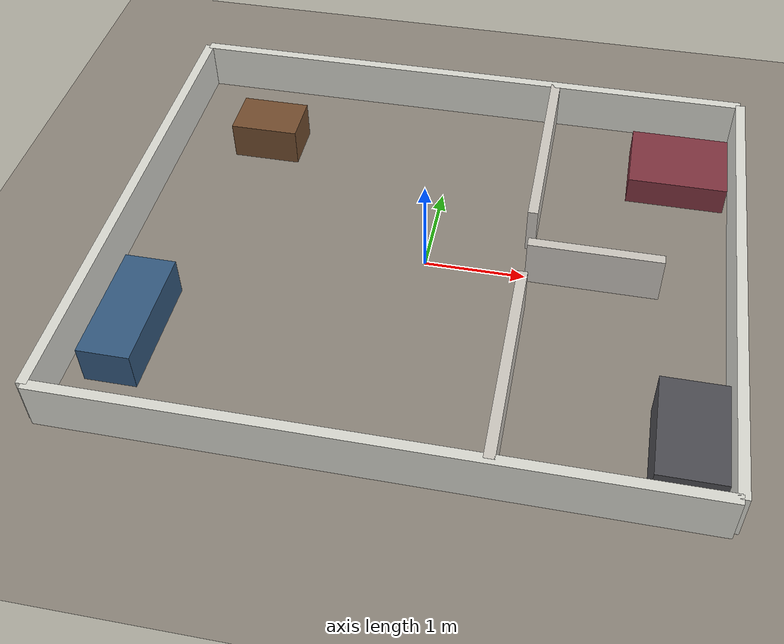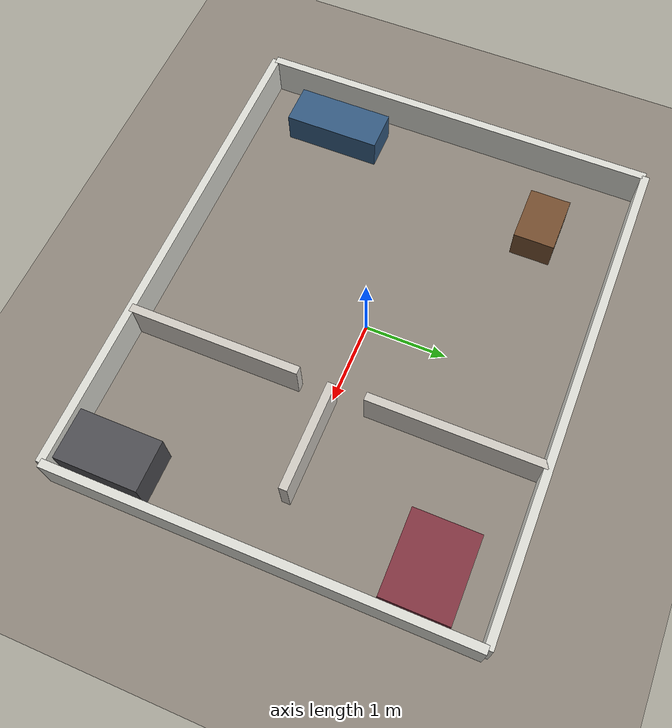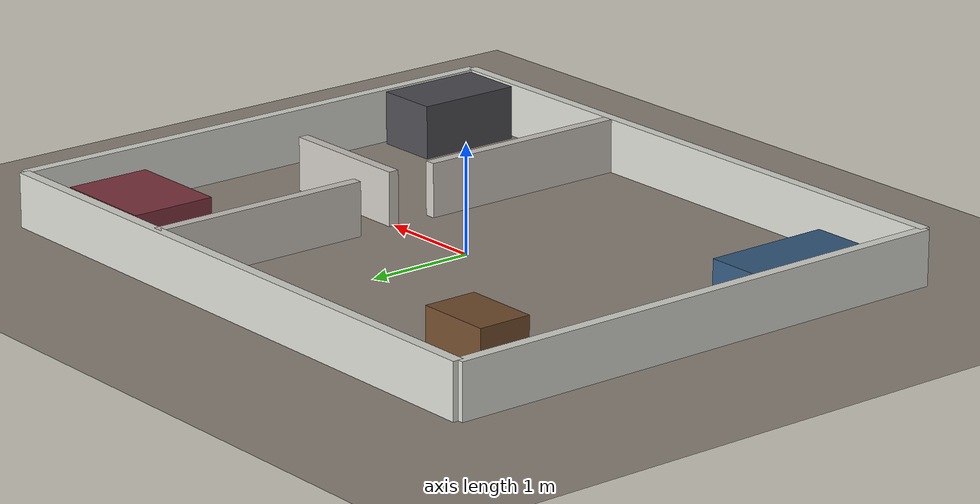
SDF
<?xml version="1.0" ?>
<sdf version="1.8">
  <world name="jetank_house">

    <!-- Physics -->
    <physics name="1ms" type="ignored">
      <max_step_size>0.001</max_step_size>
      <real_time_factor>1.0</real_time_factor>
    </physics>

    <!-- Plugins -->
    <plugin filename="libignition-gazebo-physics-system.so" name="ignition::gazebo::systems::Physics"/>
    <plugin filename="libignition-gazebo-user-commands-system.so" name="ignition::gazebo::systems::UserCommands"/>
    <plugin filename="libignition-gazebo-scene-broadcaster-system.so" name="ignition::gazebo::systems::SceneBroadcaster"/>
    <plugin filename="libignition-gazebo-contact-system.so" name="ignition::gazebo::systems::Contact"/>
    <plugin filename="libignition-gazebo-sensors-system.so" name="ignition::gazebo::systems::Sensors">
      <render_engine>ogre2</render_engine>
    </plugin>
    <plugin filename="libignition-gazebo-imu-system.so" name="ignition::gazebo::systems::Imu"/>

    <!-- Scene -->
    <scene>
      <ambient>0.4 0.4 0.4 1</ambient>
      <background>0.7 0.7 0.7 1</background>
      <shadows>true</shadows>
      <grid>false</grid>
    </scene>

    <!-- GUI -->
    <gui fullscreen="0">
      <plugin filename="MinimalScene" name="3D View">
        <ignition-gui>
          <title>3D View</title>
          <property type="bool" key="showTitleBar">false</property>
          <property type="string" key="state">docked</property>
        </ignition-gui>
        <engine>ogre2</engine>
        <scene>scene</scene>
        <ambient_light>0.4 0.4 0.4</ambient_light>
        <background_color>0.8 0.8 0.8</background_color>
        <camera_pose>0 -9 8 0 0.7 1.5708</camera_pose>
      </plugin>
      <plugin filename="GzSceneManager" name="Scene Manager"/>
      <plugin filename="InteractiveViewControl" name="Interactive view control"/>
      <plugin filename="CameraTracking" name="Camera Tracking"/>
      <plugin filename="WorldControl" name="World control">
        <ignition-gui>
          <title>World control</title>
          <property type="bool" key="showTitleBar">false</property>
          <property type="bool" key="resizable">false</property>
          <property type="double" key="height">72</property>
          <property type="double" key="width">121</property>
          <property type="double" key="z">1</property>
          <property type="string" key="state">floating</property>
          <anchors target="3D View">
            <line own="left" target="left"/>
            <line own="bottom" target="bottom"/>
          </anchors>
        </ignition-gui>
        <play_pause>true</play_pause>
        <step>true</step>
        <start_paused>true</start_paused>
      </plugin>
      <plugin filename="WorldStats" name="World stats">
        <ignition-gui>
          <title>World stats</title>
          <property type="bool" key="showTitleBar">false</property>
          <property type="bool" key="resizable">false</property>
          <property type="double" key="height">110</property>
          <property type="double" key="width">290</property>
          <property type="double" key="z">1</property>
          <property type="string" key="state">floating</property>
          <anchors target="3D View">
            <line own="right" target="right"/>
            <line own="bottom" target="bottom"/>
          </anchors>
        </ignition-gui>
        <sim_time>true</sim_time>
        <real_time>true</real_time>
        <real_time_factor>true</real_time_factor>
        <iterations>true</iterations>
      </plugin>
    </gui>

    <!-- Lighting -->
    <light type="directional" name="sun">
      <cast_shadows>true</cast_shadows>
      <pose>0 0 10 0 0 0</pose>
      <diffuse>0.8 0.8 0.8 1</diffuse>
      <specular>0.2 0.2 0.2 1</specular>
      <attenuation>
        <range>1000</range>
        <constant>0.9</constant>
        <linear>0.01</linear>
        <quadratic>0.001</quadratic>
      </attenuation>
      <direction>-0.5 0.1 -0.9</direction>
    </light>

    <!-- Floor -->
    <model name="ground_plane">
      <static>true</static>
      <link name="link">
        <collision name="collision">
          <geometry><plane><normal>0 0 1</normal><size>8 7</size></plane></geometry>
        </collision>
        <visual name="visual">
          <geometry><plane><normal>0 0 1</normal><size>8 7</size></plane></geometry>
          <material>
            <ambient>0.55 0.52 0.48 1</ambient>
            <diffuse>0.55 0.52 0.48 1</diffuse>
            <specular>0.1 0.1 0.1 1</specular>
          </material>
        </visual>
      </link>
    </model>

    <!-- Outer walls -->
    <model name="wall_north"><static>true</static><link name="l">
      <pose>0 2.5 0.25 0 0 0</pose>
      <collision name="c"><geometry><box><size>6.0 0.1 0.5</size></box></geometry></collision>
      <visual name="v"><geometry><box><size>6.0 0.1 0.5</size></box></geometry>
        <material><ambient>0.85 0.85 0.82 1</ambient><diffuse>0.85 0.85 0.82 1</diffuse></material></visual>
    </link></model>

    <model name="wall_south"><static>true</static><link name="l">
      <pose>0 -2.5 0.25 0 0 0</pose>
      <collision name="c"><geometry><box><size>6.0 0.1 0.5</size></box></geometry></collision>
      <visual name="v"><geometry><box><size>6.0 0.1 0.5</size></box></geometry>
        <material><ambient>0.85 0.85 0.82 1</ambient><diffuse>0.85 0.85 0.82 1</diffuse></material></visual>
    </link></model>

    <model name="wall_east"><static>true</static><link name="l">
      <pose>3.0 0 0.25 0 0 0</pose>
      <collision name="c"><geometry><box><size>0.1 5.0 0.5</size></box></geometry></collision>
      <visual name="v"><geometry><box><size>0.1 5.0 0.5</size></box></geometry>
        <material><ambient>0.85 0.85 0.82 1</ambient><diffuse>0.85 0.85 0.82 1</diffuse></material></visual>
    </link></model>

    <model name="wall_west"><static>true</static><link name="l">
      <pose>-3.0 0 0.25 0 0 0</pose>
      <collision name="c"><geometry><box><size>0.1 5.0 0.5</size></box></geometry></collision>
      <visual name="v"><geometry><box><size>0.1 5.0 0.5</size></box></geometry>
        <material><ambient>0.85 0.85 0.82 1</ambient><diffuse>0.85 0.85 0.82 1</diffuse></material></visual>
    </link></model>

    <!-- Vertical divider at x=1.0 (doorway y in [-0.4, 0.4]) -->
    <model name="div_v_lower"><static>true</static><link name="l">
      <pose>1.0 -1.45 0.25 0 0 0</pose>
      <collision name="c"><geometry><box><size>0.1 2.1 0.5</size></box></geometry></collision>
      <visual name="v"><geometry><box><size>0.1 2.1 0.5</size></box></geometry>
        <material><ambient>0.8 0.78 0.75 1</ambient><diffuse>0.8 0.78 0.75 1</diffuse></material></visual>
    </link></model>

    <model name="div_v_upper"><static>true</static><link name="l">
      <pose>1.0 1.45 0.25 0 0 0</pose>
      <collision name="c"><geometry><box><size>0.1 2.1 0.5</size></box></geometry></collision>
      <visual name="v"><geometry><box><size>0.1 2.1 0.5</size></box></geometry>
        <material><ambient>0.8 0.78 0.75 1</ambient><diffuse>0.8 0.78 0.75 1</diffuse></material></visual>
    </link></model>

    <!-- Horizontal divider on the right (y=0, x 1.0..2.3; doorway x 2.3..3.0) -->
    <model name="div_h"><static>true</static><link name="l">
      <pose>1.65 0 0.25 0 0 0</pose>
      <collision name="c"><geometry><box><size>1.3 0.1 0.5</size></box></geometry></collision>
      <visual name="v"><geometry><box><size>1.3 0.1 0.5</size></box></geometry>
        <material><ambient>0.8 0.78 0.75 1</ambient><diffuse>0.8 0.78 0.75 1</diffuse></material></visual>
    </link></model>

    <!-- Furniture (kept clear of the (0,0) spawn) -->
    <model name="table"><static>true</static><link name="l">
      <pose>-2.0 1.5 0.2 0 0 0</pose>
      <collision name="c"><geometry><box><size>0.7 0.5 0.4</size></box></geometry></collision>
      <visual name="v"><geometry><box><size>0.7 0.5 0.4</size></box></geometry>
        <material><ambient>0.45 0.30 0.18 1</ambient><diffuse>0.45 0.30 0.18 1</diffuse></material></visual>
    </link></model>

    <model name="sofa"><static>true</static><link name="l">
      <pose>-2.5 -1.4 0.2 0 0 0</pose>
      <collision name="c"><geometry><box><size>0.5 1.2 0.4</size></box></geometry></collision>
      <visual name="v"><geometry><box><size>0.5 1.2 0.4</size></box></geometry>
        <material><ambient>0.20 0.35 0.5 1</ambient><diffuse>0.20 0.35 0.5 1</diffuse></material></visual>
    </link></model>

    <model name="bed"><static>true</static><link name="l">
      <pose>2.4 1.7 0.15 0 0 0</pose>
      <collision name="c"><geometry><box><size>1.0 0.8 0.3</size></box></geometry></collision>
      <visual name="v"><geometry><box><size>1.0 0.8 0.3</size></box></geometry>
        <material><ambient>0.5 0.2 0.25 1</ambient><diffuse>0.5 0.2 0.25 1</diffuse></material></visual>
    </link></model>

    <model name="counter"><static>true</static><link name="l">
      <pose>2.6 -1.9 0.25 0 0 0</pose>
      <collision name="c"><geometry><box><size>0.6 1.0 0.5</size></box></geometry></collision>
      <visual name="v"><geometry><box><size>0.6 1.0 0.5</size></box></geometry>
        <material><ambient>0.3 0.3 0.32 1</ambient><diffuse>0.3 0.3 0.32 1</diffuse></material></visual>
    </link></model>

  </world>
</sdf>
